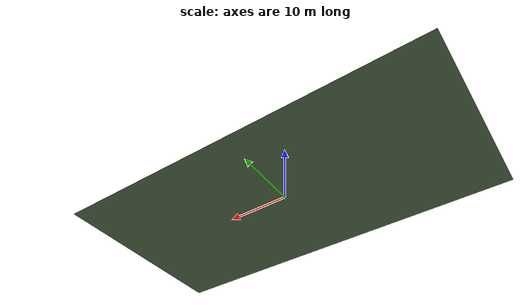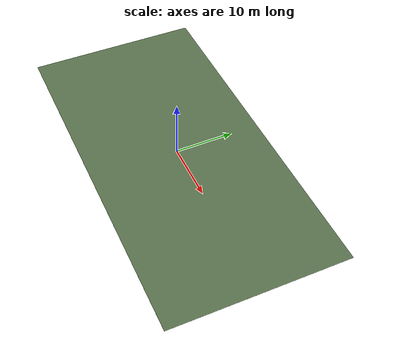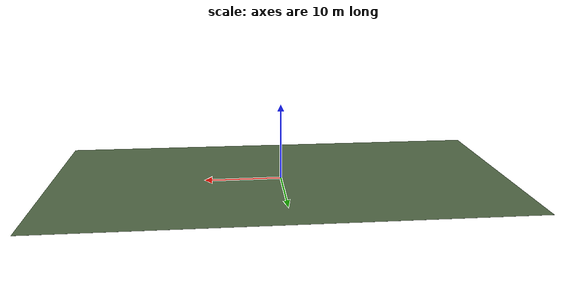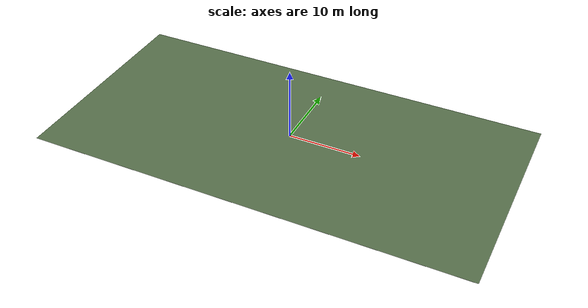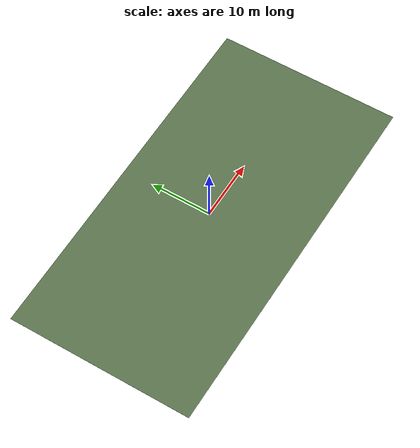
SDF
<sdf version="1.7">
<model name="flat_custom_ground_plane">
    <static>true</static>
    <link name="link">
        <collision name="collision">
            <geometry>
            <box>
                <size>60 30 0.01</size>
            </box>
            </geometry>
        </collision>
        <visual name="visual">
            <cast_shadows>false</cast_shadows>
            <geometry>
            <box>
                <size>60 30 0.01</size>
            </box>
            </geometry>
            <material>
                <ambient>0.35 0.45 0.30 1</ambient>
                <diffuse>0.35 0.45 0.30 1</diffuse>
            </material>
        </visual>
    </link>
</model>
</sdf>
